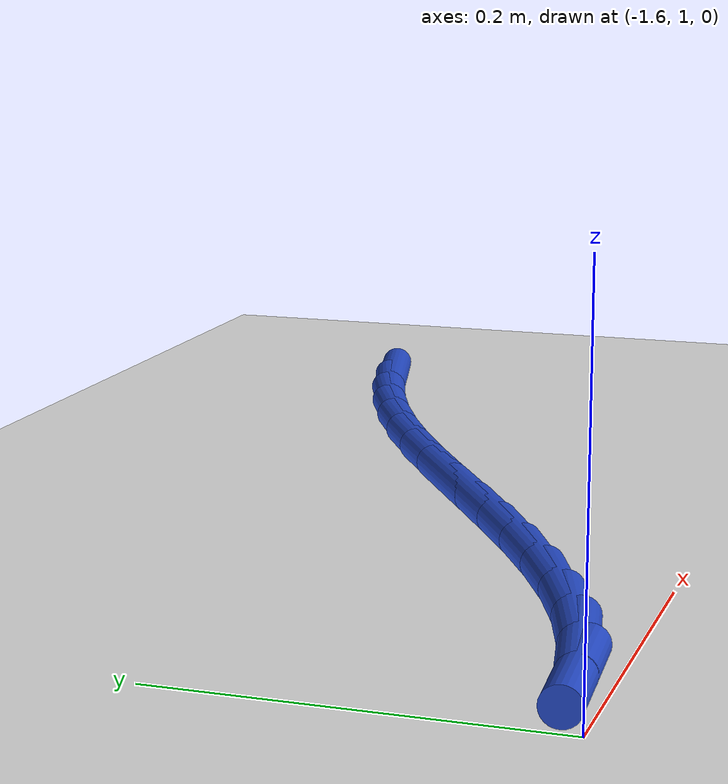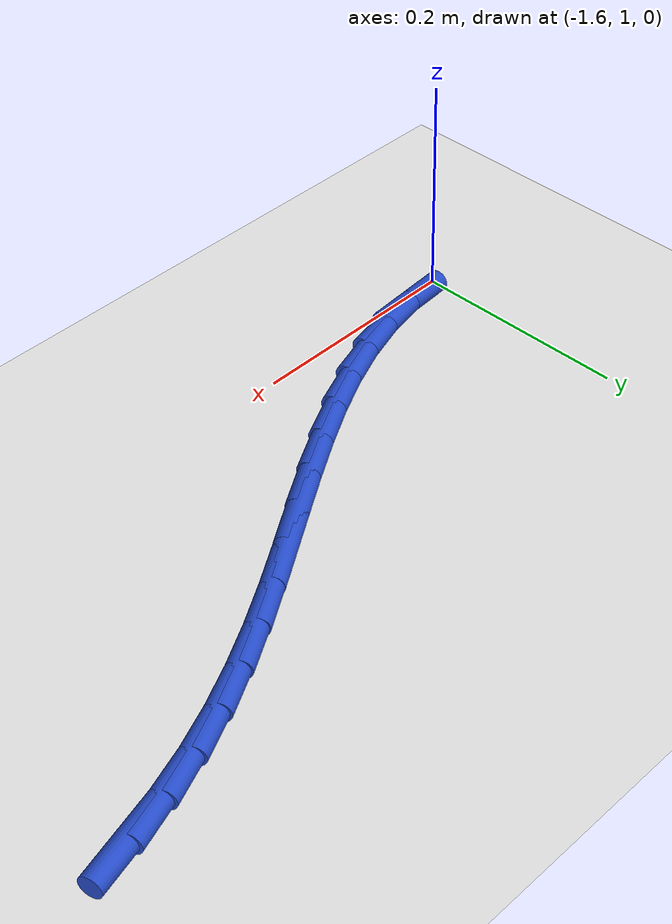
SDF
<sdf version="1.6">
 <world name="default">
  <model name="ground_plane">
   <static>1</static>
   <link name="link">
    <collision name="collision">
     <geometry><plane><normal>0 0 1</normal><size>100 100</size></plane></geometry>
     <surface><friction><ode><mu>100</mu><mu2>50</mu2></ode></friction></surface>
    </collision>
    <visual name="visual">
     <cast_shadows>0</cast_shadows>
     <geometry><plane><normal>0 0 1</normal><size>100 100</size></plane></geometry>
     <material>
      <script><uri>file://media/materials/scripts/gazebo.material</uri><name>Gazebo/WhiteGlow</name></script>
     </material>
    </visual>
   </link>
  </model>
  <model name="line">
   <link name="link_45">
    <pose>-1.0009175764749982 1.2761507550560138 0.01 0 1.57 0.25282234450929825</pose>
    <collision name="collision">
     <geometry><cylinder><radius>0.01</radius><length>0.08</length></cylinder></geometry>
    </collision>
    <visual name="visual">
     <material>
      <script><name>Gazebo/Blue</name><uri>file://media/materials/scripts/gazebo.material</uri></script>
     </material>
     <geometry><cylinder><radius>0.01</radius><length>0.08</length></cylinder></geometry>
    </visual>
   </link>
   <link name="link_46">
    <pose>-1.0401437896134809 1.2660166449535204 0.01 0 1.57 0.32377916667781625</pose>
    <collision name="collision">
     <geometry><cylinder><radius>0.01</radius><length>0.08</length></cylinder></geometry>
    </collision>
    <visual name="visual">
     <material>
      <script><name>Gazebo/Blue</name><uri>file://media/materials/scripts/gazebo.material</uri></script>
     </material>
     <geometry><cylinder><radius>0.01</radius><length>0.08</length></cylinder></geometry>
    </visual>
   </link>
   <link name="link_47">
    <pose>-1.0784073085515882 1.2531758336688323 0.01 0 1.57 0.38834429451031227</pose>
    <collision name="collision">
     <geometry><cylinder><radius>0.01</radius><length>0.08</length></cylinder></geometry>
    </collision>
    <visual name="visual">
     <material>
      <script><name>Gazebo/Blue</name><uri>file://media/materials/scripts/gazebo.material</uri></script>
     </material>
     <geometry><cylinder><radius>0.01</radius><length>0.08</length></cylinder></geometry>
    </visual>
   </link>
   <link name="link_48">
    <pose>-1.1158905378734696 1.237840666173561 0.01 0 1.57 0.44558386274883416</pose>
    <collision name="collision">
     <geometry><cylinder><radius>0.01</radius><length>0.08</length></cylinder></geometry>
    </collision>
    <visual name="visual">
     <material>
      <script><name>Gazebo/Blue</name><uri>file://media/materials/scripts/gazebo.material</uri></script>
     </material>
     <geometry><cylinder><radius>0.01</radius><length>0.08</length></cylinder></geometry>
    </visual>
   </link>
   <link name="link_49">
    <pose>-1.1527758821632736 1.2202234874393172 0.01 0 1.57 0.49498716236648876</pose>
    <collision name="collision">
     <geometry><cylinder><radius>0.01</radius><length>0.08</length></cylinder></geometry>
    </collision>
    <visual name="visual">
     <material>
      <script><name>Gazebo/Blue</name><uri>file://media/materials/scripts/gazebo.material</uri></script>
     </material>
     <geometry><cylinder><radius>0.01</radius><length>0.08</length></cylinder></geometry>
    </visual>
   </link>
   <link name="link_50">
    <pose>-1.1892457460051495 1.200536642437711 0.01 0 1.57 0.5350274507627867</pose>
    <collision name="collision">
     <geometry><cylinder><radius>0.01</radius><length>0.08</length></cylinder></geometry>
    </collision>
    <visual name="visual">
     <material>
      <script><name>Gazebo/Blue</name><uri>file://media/materials/scripts/gazebo.material</uri></script>
     </material>
     <geometry><cylinder><radius>0.01</radius><length>0.08</length></cylinder></geometry>
    </visual>
   </link>
   <link name="link_51">
    <pose>-1.225466038004763 1.179069223443069 0.01 0 1.57 0.5606889858278536</pose>
    <collision name="collision">
     <geometry><cylinder><radius>0.01</radius><length>0.08</length></cylinder></geometry>
    </collision>
    <visual name="visual">
     <material>
      <script><name>Gazebo/Blue</name><uri>file://media/materials/scripts/gazebo.material</uri></script>
     </material>
     <geometry><cylinder><radius>0.01</radius><length>0.08</length></cylinder></geometry>
    </visual>
   </link>
   <link name="link_52">
    <pose>-1.2615359866756075 1.1564205508998384 0.01 0 1.57 0.5714965667115651</pose>
    <collision name="collision">
     <geometry><cylinder><radius>0.01</radius><length>0.08</length></cylinder></geometry>
    </collision>
    <visual name="visual">
     <material>
      <script><name>Gazebo/Blue</name><uri>file://media/materials/scripts/gazebo.material</uri></script>
     </material>
     <geometry><cylinder><radius>0.01</radius><length>0.08</length></cylinder></geometry>
    </visual>
   </link>
   <link name="link_53">
    <pose>-1.2975379746312117 1.1332683205598484 0.01 0 1.57 0.5678856188450359</pose>
    <collision name="collision">
     <geometry><cylinder><radius>0.01</radius><length>0.08</length></cylinder></geometry>
    </collision>
    <visual name="visual">
     <material>
      <script><name>Gazebo/Blue</name><uri>file://media/materials/scripts/gazebo.material</uri></script>
     </material>
     <geometry><cylinder><radius>0.01</radius><length>0.08</length></cylinder></geometry>
    </visual>
   </link>
   <link name="link_54">
    <pose>-1.3335543844843898 1.1102902281782472 0.01 0 1.57 0.5496992422400554</pose>
    <collision name="collision">
     <geometry><cylinder><radius>0.01</radius><length>0.08</length></cylinder></geometry>
    </collision>
    <visual name="visual">
     <material>
      <script><name>Gazebo/Blue</name><uri>file://media/materials/scripts/gazebo.material</uri></script>
     </material>
     <geometry><cylinder><radius>0.01</radius><length>0.08</length></cylinder></geometry>
    </visual>
   </link>
   <link name="link_55">
    <pose>-1.3696675988479563 1.0881639695101841 0.01 0 1.57 0.5161960572456934</pose>
    <collision name="collision">
     <geometry><cylinder><radius>0.01</radius><length>0.08</length></cylinder></geometry>
    </collision>
    <visual name="visual">
     <material>
      <script><name>Gazebo/Blue</name><uri>file://media/materials/scripts/gazebo.material</uri></script>
     </material>
     <geometry><cylinder><radius>0.01</radius><length>0.08</length></cylinder></geometry>
    </visual>
   </link>
   <link name="link_56">
    <pose>-1.4059600003347255 1.067567240310809 0.01 0 1.57 0.46610709047637916</pose>
    <collision name="collision">
     <geometry><cylinder><radius>0.01</radius><length>0.08</length></cylinder></geometry>
    </collision>
    <visual name="visual">
     <material>
      <script><name>Gazebo/Blue</name><uri>file://media/materials/scripts/gazebo.material</uri></script>
     </material>
     <geometry><cylinder><radius>0.01</radius><length>0.08</length></cylinder></geometry>
    </visual>
   </link>
   <link name="link_57">
    <pose>-1.4425139715575126 1.0491777363352714 0.01 0 1.57 0.3977997289657891</pose>
    <collision name="collision">
     <geometry><cylinder><radius>0.01</radius><length>0.08</length></cylinder></geometry>
    </collision>
    <visual name="visual">
     <material>
      <script><name>Gazebo/Blue</name><uri>file://media/materials/scripts/gazebo.material</uri></script>
     </material>
     <geometry><cylinder><radius>0.01</radius><length>0.08</length></cylinder></geometry>
    </visual>
   </link>
   <link name="link_58">
    <pose>-1.479411895129131 1.0336731533387193 0.01 0 1.57 0.3096592833879768</pose>
    <collision name="collision">
     <geometry><cylinder><radius>0.01</radius><length>0.08</length></cylinder></geometry>
    </collision>
    <visual name="visual">
     <material>
      <script><name>Gazebo/Blue</name><uri>file://media/materials/scripts/gazebo.material</uri></script>
     </material>
     <geometry><cylinder><radius>0.01</radius><length>0.08</length></cylinder></geometry>
    </visual>
   </link>
   <link name="link_59">
    <pose>-1.5167361536623967 1.021731187076304 0.01 0 1.57 0.2008257523492841</pose>
    <collision name="collision">
     <geometry><cylinder><radius>0.01</radius><length>0.08</length></cylinder></geometry>
    </collision>
    <visual name="visual">
     <material>
      <script><name>Gazebo/Blue</name><uri>file://media/materials/scripts/gazebo.material</uri></script>
     </material>
     <geometry><cylinder><radius>0.01</radius><length>0.08</length></cylinder></geometry>
    </visual>
   </link>
   <link name="link_60">
    <pose>-1.5545691297701227 1.0140295333031728 0.01 0 1.57 0.07232447256842135</pose>
    <collision name="collision">
     <geometry><cylinder><radius>0.01</radius><length>0.08</length></cylinder></geometry>
    </collision>
    <visual name="visual">
     <material>
      <script><name>Gazebo/Blue</name><uri>file://media/materials/scripts/gazebo.material</uri></script>
     </material>
     <geometry><cylinder><radius>0.01</radius><length>0.08</length></cylinder></geometry>
    </visual>
   </link>
  </model>
 </world>
</sdf>
